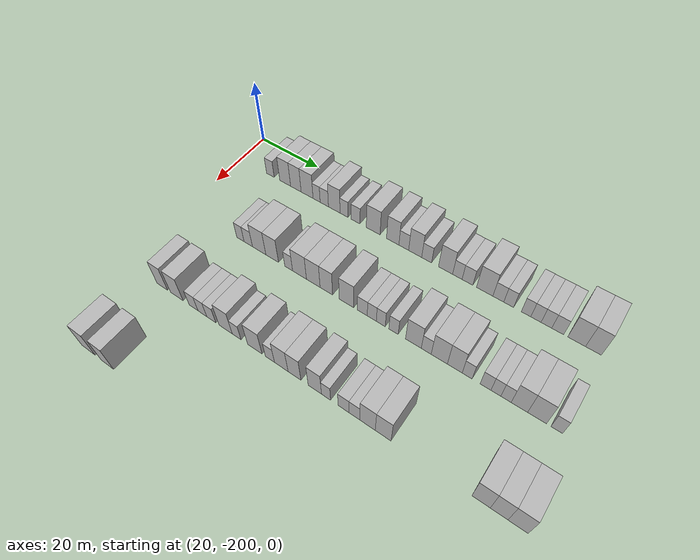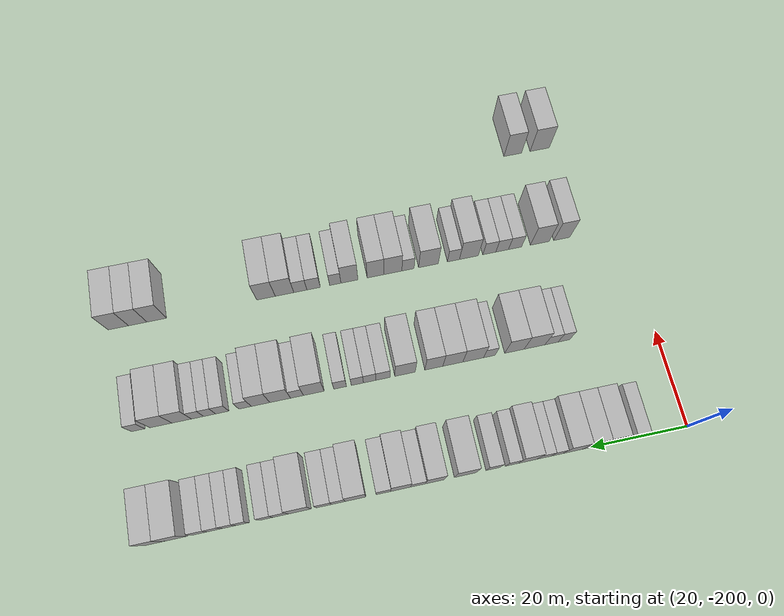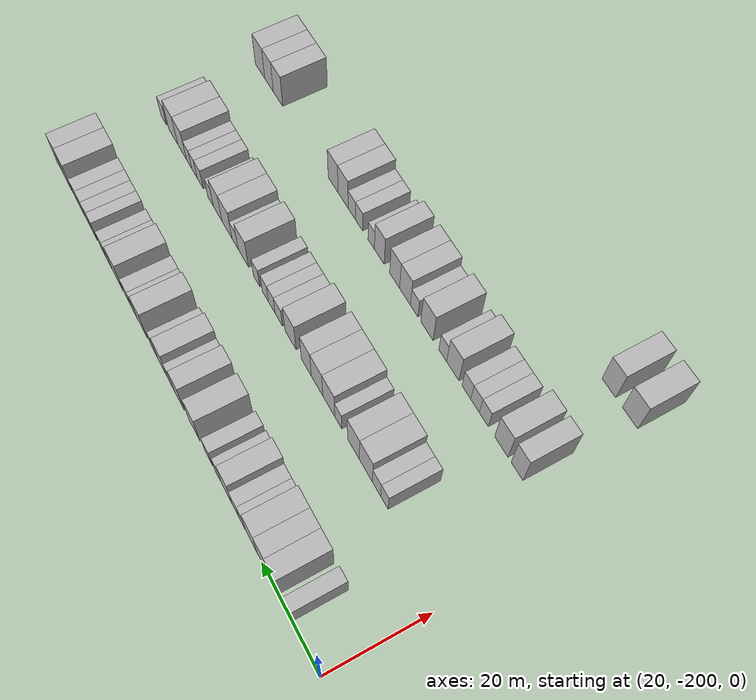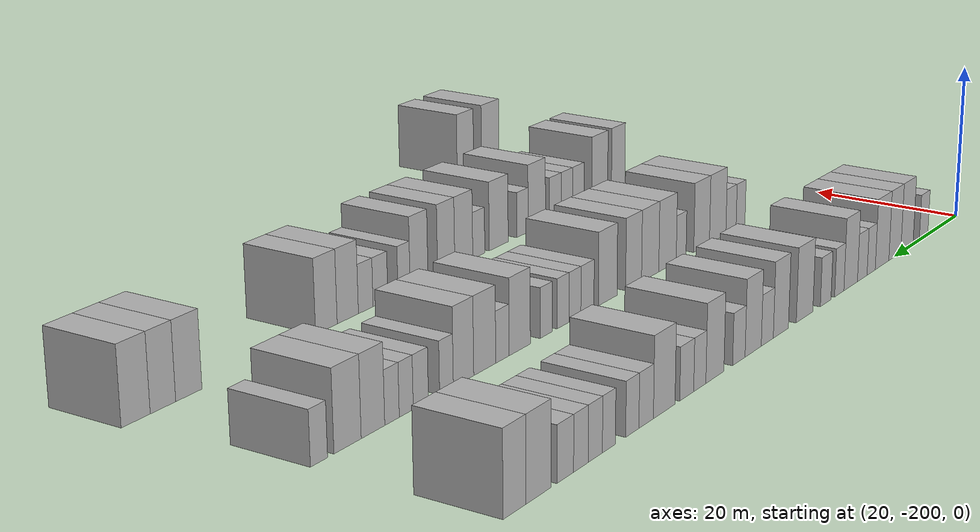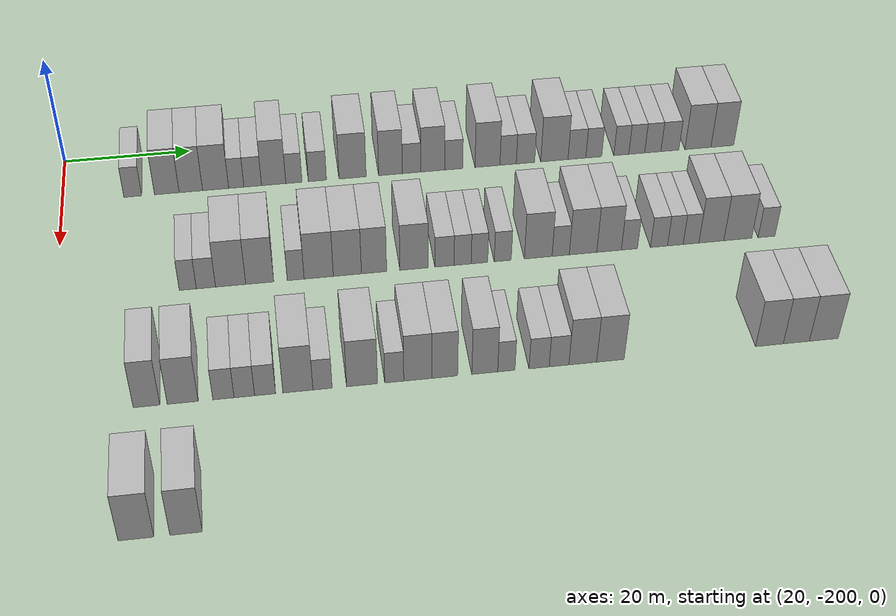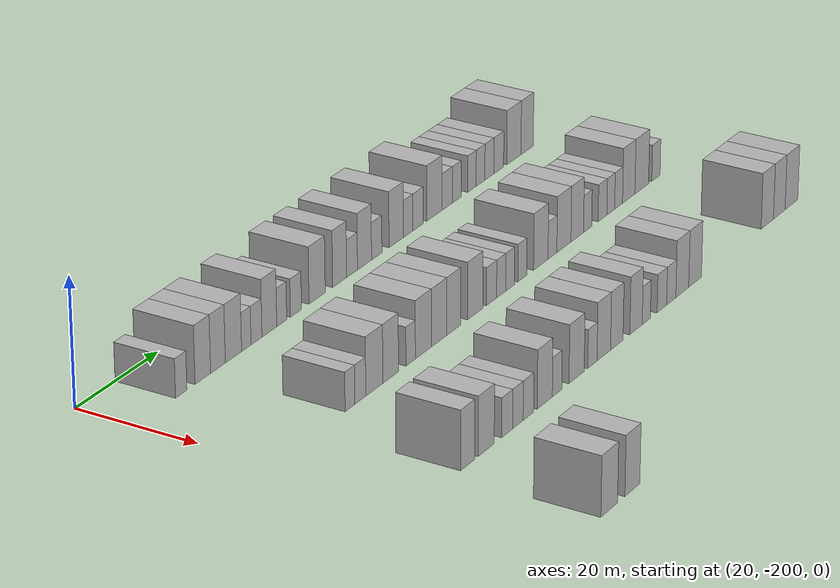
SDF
<sdf version="1.6">
 <world name="default">
  <model name="building_49">
   <static>1</static>
   <pose>25.0000 -189.1203 0 0.000000 0.000000 0.000000</pose>
   <link name="link">
    <pose>0 0 3.00 0 0 0</pose>
    <collision name="collision"><geometry><box><size>10.0000 2.7668 6.0000</size></box></geometry></collision>
    <visual name="visual">
     <cast_shadows>0</cast_shadows>
     <geometry><box><size>10.0000 2.7668 6.0000</size></box></geometry>
     <material>
      <script>
       <uri>model://HANNAS_wall/materials/scripts</uri>
       <uri>model://HANNAS_wall/materials/textures</uri>
       <name>vrc/HANNAS_wall</name>
      </script>
     </material>
    </visual>
   </link>
  </model>
  <model name="building_50">
   <static>1</static>
   <pose>25.0000 -183.8111 0 0.000000 0.000000 0.000000</pose>
   <link name="link">
    <pose>0 0 4.50 0 0 0</pose>
    <collision name="collision"><geometry><box><size>10.0000 3.8515 9.0000</size></box></geometry></collision>
    <visual name="visual">
     <cast_shadows>0</cast_shadows>
     <geometry><box><size>10.0000 3.8515 9.0000</size></box></geometry>
     <material>
      <script>
       <uri>model://HANNAS_wall/materials/scripts</uri>
       <uri>model://HANNAS_wall/materials/textures</uri>
       <name>vrc/HANNAS_wall</name>
      </script>
     </material>
    </visual>
   </link>
  </model>
  <model name="building_51">
   <static>1</static>
   <pose>25.0000 -180.0474 0 0.000000 0.000000 0.000000</pose>
   <link name="link">
    <pose>0 0 4.50 0 0 0</pose>
    <collision name="collision"><geometry><box><size>10.0000 3.6759 9.0000</size></box></geometry></collision>
    <visual name="visual">
     <cast_shadows>0</cast_shadows>
     <geometry><box><size>10.0000 3.6759 9.0000</size></box></geometry>
     <material>
      <script>
       <uri>model://HANNAS_wall/materials/scripts</uri>
       <uri>model://HANNAS_wall/materials/textures</uri>
       <name>vrc/HANNAS_wall</name>
      </script>
     </material>
    </visual>
   </link>
  </model>
  <model name="building_52">
   <static>1</static>
   <pose>25.0000 -176.1603 0 0.000000 0.000000 0.000000</pose>
   <link name="link">
    <pose>0 0 4.50 0 0 0</pose>
    <collision name="collision"><geometry><box><size>10.0000 4.0983 9.0000</size></box></geometry></collision>
    <visual name="visual">
     <cast_shadows>0</cast_shadows>
     <geometry><box><size>10.0000 4.0983 9.0000</size></box></geometry>
     <material>
      <script>
       <uri>model://HANNAS_wall/materials/scripts</uri>
       <uri>model://HANNAS_wall/materials/textures</uri>
       <name>vrc/HANNAS_wall</name>
      </script>
     </material>
    </visual>
   </link>
  </model>
  <model name="building_53">
   <static>1</static>
   <pose>25.0000 -172.9098 0 0.000000 0.000000 0.000000</pose>
   <link name="link">
    <pose>0 0 3.00 0 0 0</pose>
    <collision name="collision"><geometry><box><size>10.0000 2.4027 6.0000</size></box></geometry></collision>
    <visual name="visual">
     <cast_shadows>0</cast_shadows>
     <geometry><box><size>10.0000 2.4027 6.0000</size></box></geometry>
     <material>
      <script>
       <uri>model://HANNAS_wall/materials/scripts</uri>
       <uri>model://HANNAS_wall/materials/textures</uri>
       <name>vrc/HANNAS_wall</name>
      </script>
     </material>
    </visual>
   </link>
  </model>
  <model name="building_54">
   <static>1</static>
   <pose>25.0000 -170.3144 0 0.000000 0.000000 0.000000</pose>
   <link name="link">
    <pose>0 0 3.00 0 0 0</pose>
    <collision name="collision"><geometry><box><size>10.0000 2.7881 6.0000</size></box></geometry></collision>
    <visual name="visual">
     <cast_shadows>0</cast_shadows>
     <geometry><box><size>10.0000 2.7881 6.0000</size></box></geometry>
     <material>
      <script>
       <uri>model://HANNAS_wall/materials/scripts</uri>
       <uri>model://HANNAS_wall/materials/textures</uri>
       <name>vrc/HANNAS_wall</name>
      </script>
     </material>
    </visual>
   </link>
  </model>
  <model name="building_55">
   <static>1</static>
   <pose>25.0000 -166.9987 0 0.000000 0.000000 0.000000</pose>
   <link name="link">
    <pose>0 0 4.50 0 0 0</pose>
    <collision name="collision"><geometry><box><size>10.0000 3.8433 9.0000</size></box></geometry></collision>
    <visual name="visual">
     <cast_shadows>0</cast_shadows>
     <geometry><box><size>10.0000 3.8433 9.0000</size></box></geometry>
     <material>
      <script>
       <uri>model://HANNAS_wall/materials/scripts</uri>
       <uri>model://HANNAS_wall/materials/textures</uri>
       <name>vrc/HANNAS_wall</name>
      </script>
     </material>
    </visual>
   </link>
  </model>
  <model name="building_56">
   <static>1</static>
   <pose>25.0000 -163.7902 0 0.000000 0.000000 0.000000</pose>
   <link name="link">
    <pose>0 0 3.00 0 0 0</pose>
    <collision name="collision"><geometry><box><size>10.0000 2.5736 6.0000</size></box></geometry></collision>
    <visual name="visual">
     <cast_shadows>0</cast_shadows>
     <geometry><box><size>10.0000 2.5736 6.0000</size></box></geometry>
     <material>
      <script>
       <uri>model://HANNAS_wall/materials/scripts</uri>
       <uri>model://HANNAS_wall/materials/textures</uri>
       <name>vrc/HANNAS_wall</name>
      </script>
     </material>
    </visual>
   </link>
  </model>
  <model name="building_57">
   <static>1</static>
   <pose>25.0000 -160.0595 0 0.000000 0.000000 0.000000</pose>
   <link name="link">
    <pose>0 0 3.00 0 0 0</pose>
    <collision name="collision"><geometry><box><size>10.0000 2.8880 6.0000</size></box></geometry></collision>
    <visual name="visual">
     <cast_shadows>0</cast_shadows>
     <geometry><box><size>10.0000 2.8880 6.0000</size></box></geometry>
     <material>
      <script>
       <uri>model://HANNAS_wall/materials/scripts</uri>
       <uri>model://HANNAS_wall/materials/textures</uri>
       <name>vrc/HANNAS_wall</name>
      </script>
     </material>
    </visual>
   </link>
  </model>
  <model name="building_58">
   <static>1</static>
   <pose>25.0000 -154.4444 0 0.000000 0.000000 0.000000</pose>
   <link name="link">
    <pose>0 0 4.50 0 0 0</pose>
    <collision name="collision"><geometry><box><size>10.0000 4.3421 9.0000</size></box></geometry></collision>
    <visual name="visual">
     <cast_shadows>0</cast_shadows>
     <geometry><box><size>10.0000 4.3421 9.0000</size></box></geometry>
     <material>
      <script>
       <uri>model://HANNAS_wall/materials/scripts</uri>
       <uri>model://HANNAS_wall/materials/textures</uri>
       <name>vrc/HANNAS_wall</name>
      </script>
     </material>
    </visual>
   </link>
  </model>
  <model name="building_59">
   <static>1</static>
   <pose>25.0000 -148.3748 0 0.000000 0.000000 0.000000</pose>
   <link name="link">
    <pose>0 0 4.50 0 0 0</pose>
    <collision name="collision"><geometry><box><size>10.0000 3.7971 9.0000</size></box></geometry></collision>
    <visual name="visual">
     <cast_shadows>0</cast_shadows>
     <geometry><box><size>10.0000 3.7971 9.0000</size></box></geometry>
     <material>
      <script>
       <uri>model://HANNAS_wall/materials/scripts</uri>
       <uri>model://HANNAS_wall/materials/textures</uri>
       <name>vrc/HANNAS_wall</name>
      </script>
     </material>
    </visual>
   </link>
  </model>
  <model name="building_60">
   <static>1</static>
   <pose>25.0000 -145.0004 0 0.000000 0.000000 0.000000</pose>
   <link name="link">
    <pose>0 0 3.00 0 0 0</pose>
    <collision name="collision"><geometry><box><size>10.0000 2.9517 6.0000</size></box></geometry></collision>
    <visual name="visual">
     <cast_shadows>0</cast_shadows>
     <geometry><box><size>10.0000 2.9517 6.0000</size></box></geometry>
     <material>
      <script>
       <uri>model://HANNAS_wall/materials/scripts</uri>
       <uri>model://HANNAS_wall/materials/textures</uri>
       <name>vrc/HANNAS_wall</name>
      </script>
     </material>
    </visual>
   </link>
  </model>
  <model name="building_61">
   <static>1</static>
   <pose>25.0000 -141.5828 0 0.000000 0.000000 0.000000</pose>
   <link name="link">
    <pose>0 0 4.50 0 0 0</pose>
    <collision name="collision"><geometry><box><size>10.0000 3.8834 9.0000</size></box></geometry></collision>
    <visual name="visual">
     <cast_shadows>0</cast_shadows>
     <geometry><box><size>10.0000 3.8834 9.0000</size></box></geometry>
     <material>
      <script>
       <uri>model://HANNAS_wall/materials/scripts</uri>
       <uri>model://HANNAS_wall/materials/textures</uri>
       <name>vrc/HANNAS_wall</name>
      </script>
     </material>
    </visual>
   </link>
  </model>
  <model name="building_62">
   <static>1</static>
   <pose>25.0000 -138.1856 0 0.000000 0.000000 0.000000</pose>
   <link name="link">
    <pose>0 0 3.00 0 0 0</pose>
    <collision name="collision"><geometry><box><size>10.0000 2.9110 6.0000</size></box></geometry></collision>
    <visual name="visual">
     <cast_shadows>0</cast_shadows>
     <geometry><box><size>10.0000 2.9110 6.0000</size></box></geometry>
     <material>
      <script>
       <uri>model://HANNAS_wall/materials/scripts</uri>
       <uri>model://HANNAS_wall/materials/textures</uri>
       <name>vrc/HANNAS_wall</name>
      </script>
     </material>
    </visual>
   </link>
  </model>
  <model name="building_63">
   <static>1</static>
   <pose>25.0000 -132.7019 0 0.000000 0.000000 0.000000</pose>
   <link name="link">
    <pose>0 0 4.50 0 0 0</pose>
    <collision name="collision"><geometry><box><size>10.0000 4.0563 9.0000</size></box></geometry></collision>
    <visual name="visual">
     <cast_shadows>0</cast_shadows>
     <geometry><box><size>10.0000 4.0563 9.0000</size></box></geometry>
     <material>
      <script>
       <uri>model://HANNAS_wall/materials/scripts</uri>
       <uri>model://HANNAS_wall/materials/textures</uri>
       <name>vrc/HANNAS_wall</name>
      </script>
     </material>
    </visual>
   </link>
  </model>
  <model name="building_64">
   <static>1</static>
   <pose>25.0000 -129.3370 0 0.000000 0.000000 0.000000</pose>
   <link name="link">
    <pose>0 0 3.00 0 0 0</pose>
    <collision name="collision"><geometry><box><size>10.0000 2.6736 6.0000</size></box></geometry></collision>
    <visual name="visual">
     <cast_shadows>0</cast_shadows>
     <geometry><box><size>10.0000 2.6736 6.0000</size></box></geometry>
     <material>
      <script>
       <uri>model://HANNAS_wall/materials/scripts</uri>
       <uri>model://HANNAS_wall/materials/textures</uri>
       <name>vrc/HANNAS_wall</name>
      </script>
     </material>
    </visual>
   </link>
  </model>
  <model name="building_65">
   <static>1</static>
   <pose>25.0000 -126.5021 0 0.000000 0.000000 0.000000</pose>
   <link name="link">
    <pose>0 0 3.00 0 0 0</pose>
    <collision name="collision"><geometry><box><size>10.0000 2.9961 6.0000</size></box></geometry></collision>
    <visual name="visual">
     <cast_shadows>0</cast_shadows>
     <geometry><box><size>10.0000 2.9961 6.0000</size></box></geometry>
     <material>
      <script>
       <uri>model://HANNAS_wall/materials/scripts</uri>
       <uri>model://HANNAS_wall/materials/textures</uri>
       <name>vrc/HANNAS_wall</name>
      </script>
     </material>
    </visual>
   </link>
  </model>
  <model name="building_66">
   <static>1</static>
   <pose>25.0000 -121.7640 0 0.000000 0.000000 0.000000</pose>
   <link name="link">
    <pose>0 0 4.50 0 0 0</pose>
    <collision name="collision"><geometry><box><size>10.0000 4.4802 9.0000</size></box></geometry></collision>
    <visual name="visual">
     <cast_shadows>0</cast_shadows>
     <geometry><box><size>10.0000 4.4802 9.0000</size></box></geometry>
     <material>
      <script>
       <uri>model://HANNAS_wall/materials/scripts</uri>
       <uri>model://HANNAS_wall/materials/textures</uri>
       <name>vrc/HANNAS_wall</name>
      </script>
     </material>
    </visual>
   </link>
  </model>
  <model name="building_67">
   <static>1</static>
   <pose>25.0000 -118.0590 0 0.000000 0.000000 0.000000</pose>
   <link name="link">
    <pose>0 0 3.00 0 0 0</pose>
    <collision name="collision"><geometry><box><size>10.0000 2.9297 6.0000</size></box></geometry></collision>
    <visual name="visual">
     <cast_shadows>0</cast_shadows>
     <geometry><box><size>10.0000 2.9297 6.0000</size></box></geometry>
     <material>
      <script>
       <uri>model://HANNAS_wall/materials/scripts</uri>
       <uri>model://HANNAS_wall/materials/textures</uri>
       <name>vrc/HANNAS_wall</name>
      </script>
     </material>
    </visual>
   </link>
  </model>
  <model name="building_68">
   <static>1</static>
   <pose>25.0000 -115.2878 0 0.000000 0.000000 0.000000</pose>
   <link name="link">
    <pose>0 0 3.00 0 0 0</pose>
    <collision name="collision"><geometry><box><size>10.0000 2.6127 6.0000</size></box></geometry></collision>
    <visual name="visual">
     <cast_shadows>0</cast_shadows>
     <geometry><box><size>10.0000 2.6127 6.0000</size></box></geometry>
     <material>
      <script>
       <uri>model://HANNAS_wall/materials/scripts</uri>
       <uri>model://HANNAS_wall/materials/textures</uri>
       <name>vrc/HANNAS_wall</name>
      </script>
     </material>
    </visual>
   </link>
  </model>
  <model name="building_69">
   <static>1</static>
   <pose>25.0000 -110.7406 0 0.000000 0.000000 0.000000</pose>
   <link name="link">
    <pose>0 0 3.00 0 0 0</pose>
    <collision name="collision"><geometry><box><size>10.0000 2.4817 6.0000</size></box></geometry></collision>
    <visual name="visual">
     <cast_shadows>0</cast_shadows>
     <geometry><box><size>10.0000 2.4817 6.0000</size></box></geometry>
     <material>
      <script>
       <uri>model://HANNAS_wall/materials/scripts</uri>
       <uri>model://HANNAS_wall/materials/textures</uri>
       <name>vrc/HANNAS_wall</name>
      </script>
     </material>
    </visual>
   </link>
  </model>
  <model name="building_70">
   <static>1</static>
   <pose>25.0000 -108.1851 0 0.000000 0.000000 0.000000</pose>
   <link name="link">
    <pose>0 0 3.00 0 0 0</pose>
    <collision name="collision"><geometry><box><size>10.0000 2.6293 6.0000</size></box></geometry></collision>
    <visual name="visual">
     <cast_shadows>0</cast_shadows>
     <geometry><box><size>10.0000 2.6293 6.0000</size></box></geometry>
     <material>
      <script>
       <uri>model://HANNAS_wall/materials/scripts</uri>
       <uri>model://HANNAS_wall/materials/textures</uri>
       <name>vrc/HANNAS_wall</name>
      </script>
     </material>
    </visual>
   </link>
  </model>
  <model name="building_71">
   <static>1</static>
   <pose>25.0000 -105.5221 0 0.000000 0.000000 0.000000</pose>
   <link name="link">
    <pose>0 0 3.00 0 0 0</pose>
    <collision name="collision"><geometry><box><size>10.0000 2.6967 6.0000</size></box></geometry></collision>
    <visual name="visual">
     <cast_shadows>0</cast_shadows>
     <geometry><box><size>10.0000 2.6967 6.0000</size></box></geometry>
     <material>
      <script>
       <uri>model://HANNAS_wall/materials/scripts</uri>
       <uri>model://HANNAS_wall/materials/textures</uri>
       <name>vrc/HANNAS_wall</name>
      </script>
     </material>
    </visual>
   </link>
  </model>
  <model name="building_72">
   <static>1</static>
   <pose>25.0000 -102.6790 0 0.000000 0.000000 0.000000</pose>
   <link name="link">
    <pose>0 0 3.00 0 0 0</pose>
    <collision name="collision"><geometry><box><size>10.0000 2.9895 6.0000</size></box></geometry></collision>
    <visual name="visual">
     <cast_shadows>0</cast_shadows>
     <geometry><box><size>10.0000 2.9895 6.0000</size></box></geometry>
     <material>
      <script>
       <uri>model://HANNAS_wall/materials/scripts</uri>
       <uri>model://HANNAS_wall/materials/textures</uri>
       <name>vrc/HANNAS_wall</name>
      </script>
     </material>
    </visual>
   </link>
  </model>
  <model name="building_73">
   <static>1</static>
   <pose>25.0000 -98.0142 0 0.000000 0.000000 0.000000</pose>
   <link name="link">
    <pose>0 0 4.50 0 0 0</pose>
    <collision name="collision"><geometry><box><size>10.0000 4.3402 9.0000</size></box></geometry></collision>
    <visual name="visual">
     <cast_shadows>0</cast_shadows>
     <geometry><box><size>10.0000 4.3402 9.0000</size></box></geometry>
     <material>
      <script>
       <uri>model://HANNAS_wall/materials/scripts</uri>
       <uri>model://HANNAS_wall/materials/textures</uri>
       <name>vrc/HANNAS_wall</name>
      </script>
     </material>
    </visual>
   </link>
  </model>
  <model name="building_74">
   <static>1</static>
   <pose>25.0000 -93.9351 0 0.000000 0.000000 0.000000</pose>
   <link name="link">
    <pose>0 0 4.50 0 0 0</pose>
    <collision name="collision"><geometry><box><size>10.0000 3.8180 9.0000</size></box></geometry></collision>
    <visual name="visual">
     <cast_shadows>0</cast_shadows>
     <geometry><box><size>10.0000 3.8180 9.0000</size></box></geometry>
     <material>
      <script>
       <uri>model://HANNAS_wall/materials/scripts</uri>
       <uri>model://HANNAS_wall/materials/textures</uri>
       <name>vrc/HANNAS_wall</name>
      </script>
     </material>
    </visual>
   </link>
  </model>
  <model name="building_243">
   <static>1</static>
   <pose>47.0000 -180.8949 0 0.000000 0.000000 0.000000</pose>
   <link name="link">
    <pose>0 0 3.00 0 0 0</pose>
    <collision name="collision"><geometry><box><size>10.0000 2.4959 6.0000</size></box></geometry></collision>
    <visual name="visual">
     <cast_shadows>0</cast_shadows>
     <geometry><box><size>10.0000 2.4959 6.0000</size></box></geometry>
     <material>
      <script>
       <uri>model://HANNAS_wall/materials/scripts</uri>
       <uri>model://HANNAS_wall/materials/textures</uri>
       <name>vrc/HANNAS_wall</name>
      </script>
     </material>
    </visual>
   </link>
  </model>
  <model name="building_244">
   <static>1</static>
   <pose>47.0000 -178.2388 0 0.000000 0.000000 0.000000</pose>
   <link name="link">
    <pose>0 0 3.00 0 0 0</pose>
    <collision name="collision"><geometry><box><size>10.0000 2.8164 6.0000</size></box></geometry></collision>
    <visual name="visual">
     <cast_shadows>0</cast_shadows>
     <geometry><box><size>10.0000 2.8164 6.0000</size></box></geometry>
     <material>
      <script>
       <uri>model://HANNAS_wall/materials/scripts</uri>
       <uri>model://HANNAS_wall/materials/textures</uri>
       <name>vrc/HANNAS_wall</name>
      </script>
     </material>
    </visual>
   </link>
  </model>
  <model name="building_245">
   <static>1</static>
   <pose>47.0000 -174.6098 0 0.000000 0.000000 0.000000</pose>
   <link name="link">
    <pose>0 0 4.50 0 0 0</pose>
    <collision name="collision"><geometry><box><size>10.0000 4.4416 9.0000</size></box></geometry></collision>
    <visual name="visual">
     <cast_shadows>0</cast_shadows>
     <geometry><box><size>10.0000 4.4416 9.0000</size></box></geometry>
     <material>
      <script>
       <uri>model://HANNAS_wall/materials/scripts</uri>
       <uri>model://HANNAS_wall/materials/textures</uri>
       <name>vrc/HANNAS_wall</name>
      </script>
     </material>
    </visual>
   </link>
  </model>
  <model name="building_246">
   <static>1</static>
   <pose>47.0000 -170.3214 0 0.000000 0.000000 0.000000</pose>
   <link name="link">
    <pose>0 0 4.50 0 0 0</pose>
    <collision name="collision"><geometry><box><size>10.0000 4.1352 9.0000</size></box></geometry></collision>
    <visual name="visual">
     <cast_shadows>0</cast_shadows>
     <geometry><box><size>10.0000 4.1352 9.0000</size></box></geometry>
     <material>
      <script>
       <uri>model://HANNAS_wall/materials/scripts</uri>
       <uri>model://HANNAS_wall/materials/textures</uri>
       <name>vrc/HANNAS_wall</name>
      </script>
     </material>
    </visual>
   </link>
  </model>
  <model name="building_247">
   <static>1</static>
   <pose>47.0000 -165.0050 0 0.000000 0.000000 0.000000</pose>
   <link name="link">
    <pose>0 0 3.00 0 0 0</pose>
    <collision name="collision"><geometry><box><size>10.0000 2.4976 6.0000</size></box></geometry></collision>
    <visual name="visual">
     <cast_shadows>0</cast_shadows>
     <geometry><box><size>10.0000 2.4976 6.0000</size></box></geometry>
     <material>
      <script>
       <uri>model://HANNAS_wall/materials/scripts</uri>
       <uri>model://HANNAS_wall/materials/textures</uri>
       <name>vrc/HANNAS_wall</name>
      </script>
     </material>
    </visual>
   </link>
  </model>
  <model name="building_248">
   <static>1</static>
   <pose>47.0000 -161.5801 0 0.000000 0.000000 0.000000</pose>
   <link name="link">
    <pose>0 0 4.50 0 0 0</pose>
    <collision name="collision"><geometry><box><size>10.0000 4.3521 9.0000</size></box></geometry></collision>
    <visual name="visual">
     <cast_shadows>0</cast_shadows>
     <geometry><box><size>10.0000 4.3521 9.0000</size></box></geometry>
     <material>
      <script>
       <uri>model://HANNAS_wall/materials/scripts</uri>
       <uri>model://HANNAS_wall/materials/textures</uri>
       <name>vrc/HANNAS_wall</name>
      </script>
     </material>
    </visual>
   </link>
  </model>
  <model name="building_249">
   <static>1</static>
   <pose>47.0000 -157.3063 0 0.000000 0.000000 0.000000</pose>
   <link name="link">
    <pose>0 0 4.50 0 0 0</pose>
    <collision name="collision"><geometry><box><size>10.0000 4.1955 9.0000</size></box></geometry></collision>
    <visual name="visual">
     <cast_shadows>0</cast_shadows>
     <geometry><box><size>10.0000 4.1955 9.0000</size></box></geometry>
     <material>
      <script>
       <uri>model://HANNAS_wall/materials/scripts</uri>
       <uri>model://HANNAS_wall/materials/textures</uri>
       <name>vrc/HANNAS_wall</name>
      </script>
     </material>
    </visual>
   </link>
  </model>
  <model name="building_250">
   <static>1</static>
   <pose>47.0000 -153.3231 0 0.000000 0.000000 0.000000</pose>
   <link name="link">
    <pose>0 0 4.50 0 0 0</pose>
    <collision name="collision"><geometry><box><size>10.0000 3.7708 9.0000</size></box></geometry></collision>
    <visual name="visual">
     <cast_shadows>0</cast_shadows>
     <geometry><box><size>10.0000 3.7708 9.0000</size></box></geometry>
     <material>
      <script>
       <uri>model://HANNAS_wall/materials/scripts</uri>
       <uri>model://HANNAS_wall/materials/textures</uri>
       <name>vrc/HANNAS_wall</name>
      </script>
     </material>
    </visual>
   </link>
  </model>
  <model name="building_251">
   <static>1</static>
   <pose>47.0000 -147.3132 0 0.000000 0.000000 0.000000</pose>
   <link name="link">
    <pose>0 0 4.50 0 0 0</pose>
    <collision name="collision"><geometry><box><size>10.0000 4.2491 9.0000</size></box></geometry></collision>
    <visual name="visual">
     <cast_shadows>0</cast_shadows>
     <geometry><box><size>10.0000 4.2491 9.0000</size></box></geometry>
     <material>
      <script>
       <uri>model://HANNAS_wall/materials/scripts</uri>
       <uri>model://HANNAS_wall/materials/textures</uri>
       <name>vrc/HANNAS_wall</name>
      </script>
     </material>
    </visual>
   </link>
  </model>
  <model name="building_252">
   <static>1</static>
   <pose>47.0000 -142.7363 0 0.000000 0.000000 0.000000</pose>
   <link name="link">
    <pose>0 0 3.00 0 0 0</pose>
    <collision name="collision"><geometry><box><size>10.0000 2.9046 6.0000</size></box></geometry></collision>
    <visual name="visual">
     <cast_shadows>0</cast_shadows>
     <geometry><box><size>10.0000 2.9046 6.0000</size></box></geometry>
     <material>
      <script>
       <uri>model://HANNAS_wall/materials/scripts</uri>
       <uri>model://HANNAS_wall/materials/textures</uri>
       <name>vrc/HANNAS_wall</name>
      </script>
     </material>
    </visual>
   </link>
  </model>
  <model name="building_253">
   <static>1</static>
   <pose>47.0000 -139.9884 0 0.000000 0.000000 0.000000</pose>
   <link name="link">
    <pose>0 0 3.00 0 0 0</pose>
    <collision name="collision"><geometry><box><size>10.0000 2.5911 6.0000</size></box></geometry></collision>
    <visual name="visual">
     <cast_shadows>0</cast_shadows>
     <geometry><box><size>10.0000 2.5911 6.0000</size></box></geometry>
     <material>
      <script>
       <uri>model://HANNAS_wall/materials/scripts</uri>
       <uri>model://HANNAS_wall/materials/textures</uri>
       <name>vrc/HANNAS_wall</name>
      </script>
     </material>
    </visual>
   </link>
  </model>
  <model name="building_254">
   <static>1</static>
   <pose>47.0000 -137.4428 0 0.000000 0.000000 0.000000</pose>
   <link name="link">
    <pose>0 0 3.00 0 0 0</pose>
    <collision name="collision"><geometry><box><size>10.0000 2.5000 6.0000</size></box></geometry></collision>
    <visual name="visual">
     <cast_shadows>0</cast_shadows>
     <geometry><box><size>10.0000 2.5000 6.0000</size></box></geometry>
     <material>
      <script>
       <uri>model://HANNAS_wall/materials/scripts</uri>
       <uri>model://HANNAS_wall/materials/textures</uri>
       <name>vrc/HANNAS_wall</name>
      </script>
     </material>
    </visual>
   </link>
  </model>
  <model name="building_255">
   <static>1</static>
   <pose>47.0000 -133.9005 0 0.000000 0.000000 0.000000</pose>
   <link name="link">
    <pose>0 0 3.00 0 0 0</pose>
    <collision name="collision"><geometry><box><size>10.0000 2.5846 6.0000</size></box></geometry></collision>
    <visual name="visual">
     <cast_shadows>0</cast_shadows>
     <geometry><box><size>10.0000 2.5846 6.0000</size></box></geometry>
     <material>
      <script>
       <uri>model://HANNAS_wall/materials/scripts</uri>
       <uri>model://HANNAS_wall/materials/textures</uri>
       <name>vrc/HANNAS_wall</name>
      </script>
     </material>
    </visual>
   </link>
  </model>
  <model name="building_256">
   <static>1</static>
   <pose>47.0000 -128.4847 0 0.000000 0.000000 0.000000</pose>
   <link name="link">
    <pose>0 0 4.50 0 0 0</pose>
    <collision name="collision"><geometry><box><size>10.0000 4.2471 9.0000</size></box></geometry></collision>
    <visual name="visual">
     <cast_shadows>0</cast_shadows>
     <geometry><box><size>10.0000 4.2471 9.0000</size></box></geometry>
     <material>
      <script>
       <uri>model://HANNAS_wall/materials/scripts</uri>
       <uri>model://HANNAS_wall/materials/textures</uri>
       <name>vrc/HANNAS_wall</name>
      </script>
     </material>
    </visual>
   </link>
  </model>
  <model name="building_257">
   <static>1</static>
   <pose>47.0000 -125.0440 0 0.000000 0.000000 0.000000</pose>
   <link name="link">
    <pose>0 0 3.00 0 0 0</pose>
    <collision name="collision"><geometry><box><size>10.0000 2.6342 6.0000</size></box></geometry></collision>
    <visual name="visual">
     <cast_shadows>0</cast_shadows>
     <geometry><box><size>10.0000 2.6342 6.0000</size></box></geometry>
     <material>
      <script>
       <uri>model://HANNAS_wall/materials/scripts</uri>
       <uri>model://HANNAS_wall/materials/textures</uri>
       <name>vrc/HANNAS_wall</name>
      </script>
     </material>
    </visual>
   </link>
  </model>
  <model name="building_258">
   <static>1</static>
   <pose>47.0000 -121.6155 0 0.000000 0.000000 0.000000</pose>
   <link name="link">
    <pose>0 0 4.50 0 0 0</pose>
    <collision name="collision"><geometry><box><size>10.0000 4.2228 9.0000</size></box></geometry></collision>
    <visual name="visual">
     <cast_shadows>0</cast_shadows>
     <geometry><box><size>10.0000 4.2228 9.0000</size></box></geometry>
     <material>
      <script>
       <uri>model://HANNAS_wall/materials/scripts</uri>
       <uri>model://HANNAS_wall/materials/textures</uri>
       <name>vrc/HANNAS_wall</name>
      </script>
     </material>
    </visual>
   </link>
  </model>
  <model name="building_259">
   <static>1</static>
   <pose>47.0000 -117.6067 0 0.000000 0.000000 0.000000</pose>
   <link name="link">
    <pose>0 0 4.50 0 0 0</pose>
    <collision name="collision"><geometry><box><size>10.0000 3.7948 9.0000</size></box></geometry></collision>
    <visual name="visual">
     <cast_shadows>0</cast_shadows>
     <geometry><box><size>10.0000 3.7948 9.0000</size></box></geometry>
     <material>
      <script>
       <uri>model://HANNAS_wall/materials/scripts</uri>
       <uri>model://HANNAS_wall/materials/textures</uri>
       <name>vrc/HANNAS_wall</name>
      </script>
     </material>
    </visual>
   </link>
  </model>
  <model name="building_260">
   <static>1</static>
   <pose>47.0000 -114.4599 0 0.000000 0.000000 0.000000</pose>
   <link name="link">
    <pose>0 0 3.00 0 0 0</pose>
    <collision name="collision"><geometry><box><size>10.0000 2.4990 6.0000</size></box></geometry></collision>
    <visual name="visual">
     <cast_shadows>0</cast_shadows>
     <geometry><box><size>10.0000 2.4990 6.0000</size></box></geometry>
     <material>
      <script>
       <uri>model://HANNAS_wall/materials/scripts</uri>
       <uri>model://HANNAS_wall/materials/textures</uri>
       <name>vrc/HANNAS_wall</name>
      </script>
     </material>
    </visual>
   </link>
  </model>
  <model name="building_261">
   <static>1</static>
   <pose>47.0000 -109.8763 0 0.000000 0.000000 0.000000</pose>
   <link name="link">
    <pose>0 0 3.00 0 0 0</pose>
    <collision name="collision"><geometry><box><size>10.0000 2.6680 6.0000</size></box></geometry></collision>
    <visual name="visual">
     <cast_shadows>0</cast_shadows>
     <geometry><box><size>10.0000 2.6680 6.0000</size></box></geometry>
     <material>
      <script>
       <uri>model://HANNAS_wall/materials/scripts</uri>
       <uri>model://HANNAS_wall/materials/textures</uri>
       <name>vrc/HANNAS_wall</name>
      </script>
     </material>
    </visual>
   </link>
  </model>
  <model name="building_262">
   <static>1</static>
   <pose>47.0000 -107.3343 0 0.000000 0.000000 0.000000</pose>
   <link name="link">
    <pose>0 0 3.00 0 0 0</pose>
    <collision name="collision"><geometry><box><size>10.0000 2.4160 6.0000</size></box></geometry></collision>
    <visual name="visual">
     <cast_shadows>0</cast_shadows>
     <geometry><box><size>10.0000 2.4160 6.0000</size></box></geometry>
     <material>
      <script>
       <uri>model://HANNAS_wall/materials/scripts</uri>
       <uri>model://HANNAS_wall/materials/textures</uri>
       <name>vrc/HANNAS_wall</name>
      </script>
     </material>
    </visual>
   </link>
  </model>
  <model name="building_263">
   <static>1</static>
   <pose>47.0000 -104.8967 0 0.000000 0.000000 0.000000</pose>
   <link name="link">
    <pose>0 0 3.00 0 0 0</pose>
    <collision name="collision"><geometry><box><size>10.0000 2.4593 6.0000</size></box></geometry></collision>
    <visual name="visual">
     <cast_shadows>0</cast_shadows>
     <geometry><box><size>10.0000 2.4593 6.0000</size></box></geometry>
     <material>
      <script>
       <uri>model://HANNAS_wall/materials/scripts</uri>
       <uri>model://HANNAS_wall/materials/textures</uri>
       <name>vrc/HANNAS_wall</name>
      </script>
     </material>
    </visual>
   </link>
  </model>
  <model name="building_264">
   <static>1</static>
   <pose>47.0000 -101.7194 0 0.000000 0.000000 0.000000</pose>
   <link name="link">
    <pose>0 0 4.50 0 0 0</pose>
    <collision name="collision"><geometry><box><size>10.0000 3.8954 9.0000</size></box></geometry></collision>
    <visual name="visual">
     <cast_shadows>0</cast_shadows>
     <geometry><box><size>10.0000 3.8954 9.0000</size></box></geometry>
     <material>
      <script>
       <uri>model://HANNAS_wall/materials/scripts</uri>
       <uri>model://HANNAS_wall/materials/textures</uri>
       <name>vrc/HANNAS_wall</name>
      </script>
     </material>
    </visual>
   </link>
  </model>
  <model name="building_265">
   <static>1</static>
   <pose>47.0000 -97.5864 0 0.000000 0.000000 0.000000</pose>
   <link name="link">
    <pose>0 0 4.50 0 0 0</pose>
    <collision name="collision"><geometry><box><size>10.0000 4.3707 9.0000</size></box></geometry></collision>
    <visual name="visual">
     <cast_shadows>0</cast_shadows>
     <geometry><box><size>10.0000 4.3707 9.0000</size></box></geometry>
     <material>
      <script>
       <uri>model://HANNAS_wall/materials/scripts</uri>
       <uri>model://HANNAS_wall/materials/textures</uri>
       <name>vrc/HANNAS_wall</name>
      </script>
     </material>
    </visual>
   </link>
  </model>
  <model name="building_266">
   <static>1</static>
   <pose>47.0000 -93.0725 0 0.000000 0.000000 0.000000</pose>
   <link name="link">
    <pose>0 0 3.00 0 0 0</pose>
    <collision name="collision"><geometry><box><size>10.0000 2.6570 6.0000</size></box></geometry></collision>
    <visual name="visual">
     <cast_shadows>0</cast_shadows>
     <geometry><box><size>10.0000 2.6570 6.0000</size></box></geometry>
     <material>
      <script>
       <uri>model://HANNAS_wall/materials/scripts</uri>
       <uri>model://HANNAS_wall/materials/textures</uri>
       <name>vrc/HANNAS_wall</name>
      </script>
     </material>
    </visual>
   </link>
  </model>
  <model name="building_435">
   <static>1</static>
   <pose>69.0000 -186.8688 0 0.000000 0.000000 0.000000</pose>
   <link name="link">
    <pose>0 0 4.50 0 0 0</pose>
    <collision name="collision"><geometry><box><size>10.0000 3.6154 9.0000</size></box></geometry></collision>
    <visual name="visual">
     <cast_shadows>0</cast_shadows>
     <geometry><box><size>10.0000 3.6154 9.0000</size></box></geometry>
     <material>
      <script>
       <uri>model://HANNAS_wall/materials/scripts</uri>
       <uri>model://HANNAS_wall/materials/textures</uri>
       <name>vrc/HANNAS_wall</name>
      </script>
     </material>
    </visual>
   </link>
  </model>
  <model name="building_436">
   <static>1</static>
   <pose>69.0000 -181.9605 0 0.000000 0.000000 0.000000</pose>
   <link name="link">
    <pose>0 0 4.50 0 0 0</pose>
    <collision name="collision"><geometry><box><size>10.0000 4.2012 9.0000</size></box></geometry></collision>
    <visual name="visual">
     <cast_shadows>0</cast_shadows>
     <geometry><box><size>10.0000 4.2012 9.0000</size></box></geometry>
     <material>
      <script>
       <uri>model://HANNAS_wall/materials/scripts</uri>
       <uri>model://HANNAS_wall/materials/textures</uri>
       <name>vrc/HANNAS_wall</name>
      </script>
     </material>
    </visual>
   </link>
  </model>
  <model name="building_437">
   <static>1</static>
   <pose>69.0000 -176.4046 0 0.000000 0.000000 0.000000</pose>
   <link name="link">
    <pose>0 0 3.00 0 0 0</pose>
    <collision name="collision"><geometry><box><size>10.0000 2.9106 6.0000</size></box></geometry></collision>
    <visual name="visual">
     <cast_shadows>0</cast_shadows>
     <geometry><box><size>10.0000 2.9106 6.0000</size></box></geometry>
     <material>
      <script>
       <uri>model://HANNAS_wall/materials/scripts</uri>
       <uri>model://HANNAS_wall/materials/textures</uri>
       <name>vrc/HANNAS_wall</name>
      </script>
     </material>
    </visual>
   </link>
  </model>
  <model name="building_438">
   <static>1</static>
   <pose>69.0000 -173.5458 0 0.000000 0.000000 0.000000</pose>
   <link name="link">
    <pose>0 0 3.00 0 0 0</pose>
    <collision name="collision"><geometry><box><size>10.0000 2.8070 6.0000</size></box></geometry></collision>
    <visual name="visual">
     <cast_shadows>0</cast_shadows>
     <geometry><box><size>10.0000 2.8070 6.0000</size></box></geometry>
     <material>
      <script>
       <uri>model://HANNAS_wall/materials/scripts</uri>
       <uri>model://HANNAS_wall/materials/textures</uri>
       <name>vrc/HANNAS_wall</name>
      </script>
     </material>
    </visual>
   </link>
  </model>
  <model name="building_439">
   <static>1</static>
   <pose>69.0000 -170.7017 0 0.000000 0.000000 0.000000</pose>
   <link name="link">
    <pose>0 0 3.00 0 0 0</pose>
    <collision name="collision"><geometry><box><size>10.0000 2.8811 6.0000</size></box></geometry></collision>
    <visual name="visual">
     <cast_shadows>0</cast_shadows>
     <geometry><box><size>10.0000 2.8811 6.0000</size></box></geometry>
     <material>
      <script>
       <uri>model://HANNAS_wall/materials/scripts</uri>
       <uri>model://HANNAS_wall/materials/textures</uri>
       <name>vrc/HANNAS_wall</name>
      </script>
     </material>
    </visual>
   </link>
  </model>
  <model name="building_440">
   <static>1</static>
   <pose>69.0000 -166.1869 0 0.000000 0.000000 0.000000</pose>
   <link name="link">
    <pose>0 0 4.50 0 0 0</pose>
    <collision name="collision"><geometry><box><size>10.0000 4.1485 9.0000</size></box></geometry></collision>
    <visual name="visual">
     <cast_shadows>0</cast_shadows>
     <geometry><box><size>10.0000 4.1485 9.0000</size></box></geometry>
     <material>
      <script>
       <uri>model://HANNAS_wall/materials/scripts</uri>
       <uri>model://HANNAS_wall/materials/textures</uri>
       <name>vrc/HANNAS_wall</name>
      </script>
     </material>
    </visual>
   </link>
  </model>
  <model name="building_441">
   <static>1</static>
   <pose>69.0000 -162.7842 0 0.000000 0.000000 0.000000</pose>
   <link name="link">
    <pose>0 0 3.00 0 0 0</pose>
    <collision name="collision"><geometry><box><size>10.0000 2.6570 6.0000</size></box></geometry></collision>
    <visual name="visual">
     <cast_shadows>0</cast_shadows>
     <geometry><box><size>10.0000 2.6570 6.0000</size></box></geometry>
     <material>
      <script>
       <uri>model://HANNAS_wall/materials/scripts</uri>
       <uri>model://HANNAS_wall/materials/textures</uri>
       <name>vrc/HANNAS_wall</name>
      </script>
     </material>
    </visual>
   </link>
  </model>
  <model name="building_442">
   <static>1</static>
   <pose>69.0000 -157.3036 0 0.000000 0.000000 0.000000</pose>
   <link name="link">
    <pose>0 0 4.50 0 0 0</pose>
    <collision name="collision"><geometry><box><size>10.0000 4.3043 9.0000</size></box></geometry></collision>
    <visual name="visual">
     <cast_shadows>0</cast_shadows>
     <geometry><box><size>10.0000 4.3043 9.0000</size></box></geometry>
     <material>
      <script>
       <uri>model://HANNAS_wall/materials/scripts</uri>
       <uri>model://HANNAS_wall/materials/textures</uri>
       <name>vrc/HANNAS_wall</name>
      </script>
     </material>
    </visual>
   </link>
  </model>
  <model name="building_443">
   <static>1</static>
   <pose>69.0000 -152.8219 0 0.000000 0.000000 0.000000</pose>
   <link name="link">
    <pose>0 0 3.00 0 0 0</pose>
    <collision name="collision"><geometry><box><size>10.0000 2.6592 6.0000</size></box></geometry></collision>
    <visual name="visual">
     <cast_shadows>0</cast_shadows>
     <geometry><box><size>10.0000 2.6592 6.0000</size></box></geometry>
     <material>
      <script>
       <uri>model://HANNAS_wall/materials/scripts</uri>
       <uri>model://HANNAS_wall/materials/textures</uri>
       <name>vrc/HANNAS_wall</name>
      </script>
     </material>
    </visual>
   </link>
  </model>
  <model name="building_444">
   <static>1</static>
   <pose>69.0000 -149.5443 0 0.000000 0.000000 0.000000</pose>
   <link name="link">
    <pose>0 0 4.50 0 0 0</pose>
    <collision name="collision"><geometry><box><size>10.0000 3.8961 9.0000</size></box></geometry></collision>
    <visual name="visual">
     <cast_shadows>0</cast_shadows>
     <geometry><box><size>10.0000 3.8961 9.0000</size></box></geometry>
     <material>
      <script>
       <uri>model://HANNAS_wall/materials/scripts</uri>
       <uri>model://HANNAS_wall/materials/textures</uri>
       <name>vrc/HANNAS_wall</name>
      </script>
     </material>
    </visual>
   </link>
  </model>
  <model name="building_445">
   <static>1</static>
   <pose>69.0000 -145.7775 0 0.000000 0.000000 0.000000</pose>
   <link name="link">
    <pose>0 0 4.50 0 0 0</pose>
    <collision name="collision"><geometry><box><size>10.0000 3.6374 9.0000</size></box></geometry></collision>
    <visual name="visual">
     <cast_shadows>0</cast_shadows>
     <geometry><box><size>10.0000 3.6374 9.0000</size></box></geometry>
     <material>
      <script>
       <uri>model://HANNAS_wall/materials/scripts</uri>
       <uri>model://HANNAS_wall/materials/textures</uri>
       <name>vrc/HANNAS_wall</name>
      </script>
     </material>
    </visual>
   </link>
  </model>
  <model name="building_446">
   <static>1</static>
   <pose>69.0000 -140.1317 0 0.000000 0.000000 0.000000</pose>
   <link name="link">
    <pose>0 0 4.50 0 0 0</pose>
    <collision name="collision"><geometry><box><size>10.0000 3.6543 9.0000</size></box></geometry></collision>
    <visual name="visual">
     <cast_shadows>0</cast_shadows>
     <geometry><box><size>10.0000 3.6543 9.0000</size></box></geometry>
     <material>
      <script>
       <uri>model://HANNAS_wall/materials/scripts</uri>
       <uri>model://HANNAS_wall/materials/textures</uri>
       <name>vrc/HANNAS_wall</name>
      </script>
     </material>
    </visual>
   </link>
  </model>
  <model name="building_447">
   <static>1</static>
   <pose>69.0000 -137.0834 0 0.000000 0.000000 0.000000</pose>
   <link name="link">
    <pose>0 0 3.00 0 0 0</pose>
    <collision name="collision"><geometry><box><size>10.0000 2.4422 6.0000</size></box></geometry></collision>
    <visual name="visual">
     <cast_shadows>0</cast_shadows>
     <geometry><box><size>10.0000 2.4422 6.0000</size></box></geometry>
     <material>
      <script>
       <uri>model://HANNAS_wall/materials/scripts</uri>
       <uri>model://HANNAS_wall/materials/textures</uri>
       <name>vrc/HANNAS_wall</name>
      </script>
     </material>
    </visual>
   </link>
  </model>
  <model name="building_448">
   <static>1</static>
   <pose>69.0000 -132.4283 0 0.000000 0.000000 0.000000</pose>
   <link name="link">
    <pose>0 0 3.00 0 0 0</pose>
    <collision name="collision"><geometry><box><size>10.0000 2.8679 6.0000</size></box></geometry></collision>
    <visual name="visual">
     <cast_shadows>0</cast_shadows>
     <geometry><box><size>10.0000 2.8679 6.0000</size></box></geometry>
     <material>
      <script>
       <uri>model://HANNAS_wall/materials/scripts</uri>
       <uri>model://HANNAS_wall/materials/textures</uri>
       <name>vrc/HANNAS_wall</name>
      </script>
     </material>
    </visual>
   </link>
  </model>
  <model name="building_449">
   <static>1</static>
   <pose>69.0000 -129.5919 0 0.000000 0.000000 0.000000</pose>
   <link name="link">
    <pose>0 0 3.00 0 0 0</pose>
    <collision name="collision"><geometry><box><size>10.0000 2.8051 6.0000</size></box></geometry></collision>
    <visual name="visual">
     <cast_shadows>0</cast_shadows>
     <geometry><box><size>10.0000 2.8051 6.0000</size></box></geometry>
     <material>
      <script>
       <uri>model://HANNAS_wall/materials/scripts</uri>
       <uri>model://HANNAS_wall/materials/textures</uri>
       <name>vrc/HANNAS_wall</name>
      </script>
     </material>
    </visual>
   </link>
  </model>
  <model name="building_450">
   <static>1</static>
   <pose>69.0000 -126.2103 0 0.000000 0.000000 0.000000</pose>
   <link name="link">
    <pose>0 0 4.50 0 0 0</pose>
    <collision name="collision"><geometry><box><size>10.0000 3.9581 9.0000</size></box></geometry></collision>
    <visual name="visual">
     <cast_shadows>0</cast_shadows>
     <geometry><box><size>10.0000 3.9581 9.0000</size></box></geometry>
     <material>
      <script>
       <uri>model://HANNAS_wall/materials/scripts</uri>
       <uri>model://HANNAS_wall/materials/textures</uri>
       <name>vrc/HANNAS_wall</name>
      </script>
     </material>
    </visual>
   </link>
  </model>
  <model name="building_451">
   <static>1</static>
   <pose>69.0000 -122.2641 0 0.000000 0.000000 0.000000</pose>
   <link name="link">
    <pose>0 0 4.50 0 0 0</pose>
    <collision name="collision"><geometry><box><size>10.0000 3.9342 9.0000</size></box></geometry></collision>
    <visual name="visual">
     <cast_shadows>0</cast_shadows>
     <geometry><box><size>10.0000 3.9342 9.0000</size></box></geometry>
     <material>
      <script>
       <uri>model://HANNAS_wall/materials/scripts</uri>
       <uri>model://HANNAS_wall/materials/textures</uri>
       <name>vrc/HANNAS_wall</name>
      </script>
     </material>
    </visual>
   </link>
  </model>
  <model name="building_452">
   <static>1</static>
   <pose>69.0000 -99.2137 0 0.000000 0.000000 0.000000</pose>
   <link name="link">
    <pose>0 0 4.50 0 0 0</pose>
    <collision name="collision"><geometry><box><size>10.0000 4.0556 9.0000</size></box></geometry></collision>
    <visual name="visual">
     <cast_shadows>0</cast_shadows>
     <geometry><box><size>10.0000 4.0556 9.0000</size></box></geometry>
     <material>
      <script>
       <uri>model://HANNAS_wall/materials/scripts</uri>
       <uri>model://HANNAS_wall/materials/textures</uri>
       <name>vrc/HANNAS_wall</name>
      </script>
     </material>
    </visual>
   </link>
  </model>
  <model name="building_453">
   <static>1</static>
   <pose>69.0000 -95.2722 0 0.000000 0.000000 0.000000</pose>
   <link name="link">
    <pose>0 0 4.50 0 0 0</pose>
    <collision name="collision"><geometry><box><size>10.0000 3.8274 9.0000</size></box></geometry></collision>
    <visual name="visual">
     <cast_shadows>0</cast_shadows>
     <geometry><box><size>10.0000 3.8274 9.0000</size></box></geometry>
     <material>
      <script>
       <uri>model://HANNAS_wall/materials/scripts</uri>
       <uri>model://HANNAS_wall/materials/textures</uri>
       <name>vrc/HANNAS_wall</name>
      </script>
     </material>
    </visual>
   </link>
  </model>
  <model name="building_454">
   <static>1</static>
   <pose>69.0000 -91.2359 0 0.000000 0.000000 0.000000</pose>
   <link name="link">
    <pose>0 0 4.50 0 0 0</pose>
    <collision name="collision"><geometry><box><size>10.0000 4.2453 9.0000</size></box></geometry></collision>
    <visual name="visual">
     <cast_shadows>0</cast_shadows>
     <geometry><box><size>10.0000 4.2453 9.0000</size></box></geometry>
     <material>
      <script>
       <uri>model://HANNAS_wall/materials/scripts</uri>
       <uri>model://HANNAS_wall/materials/textures</uri>
       <name>vrc/HANNAS_wall</name>
      </script>
     </material>
    </visual>
   </link>
  </model>
  <model name="building_629">
   <static>1</static>
   <pose>91.0000 -188.1338 0 0.000000 0.000000 0.000000</pose>
   <link name="link">
    <pose>0 0 4.50 0 0 0</pose>
    <collision name="collision"><geometry><box><size>10.0000 4.4780 9.0000</size></box></geometry></collision>
    <visual name="visual">
     <cast_shadows>0</cast_shadows>
     <geometry><box><size>10.0000 4.4780 9.0000</size></box></geometry>
     <material>
      <script>
       <uri>model://HANNAS_wall/materials/scripts</uri>
       <uri>model://HANNAS_wall/materials/textures</uri>
       <name>vrc/HANNAS_wall</name>
      </script>
     </material>
    </visual>
   </link>
  </model>
  <model name="building_630">
   <static>1</static>
   <pose>91.0000 -181.8504 0 0.000000 0.000000 0.000000</pose>
   <link name="link">
    <pose>0 0 4.50 0 0 0</pose>
    <collision name="collision"><geometry><box><size>10.0000 4.0888 9.0000</size></box></geometry></collision>
    <visual name="visual">
     <cast_shadows>0</cast_shadows>
     <geometry><box><size>10.0000 4.0888 9.0000</size></box></geometry>
     <material>
      <script>
       <uri>model://HANNAS_wall/materials/scripts</uri>
       <uri>model://HANNAS_wall/materials/textures</uri>
       <name>vrc/HANNAS_wall</name>
      </script>
     </material>
    </visual>
   </link>
  </model>
 </world>
</sdf>
